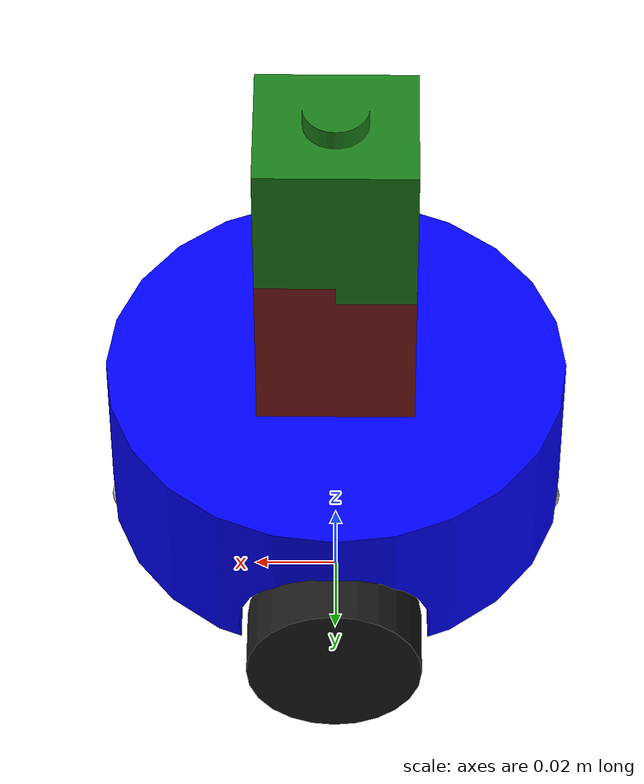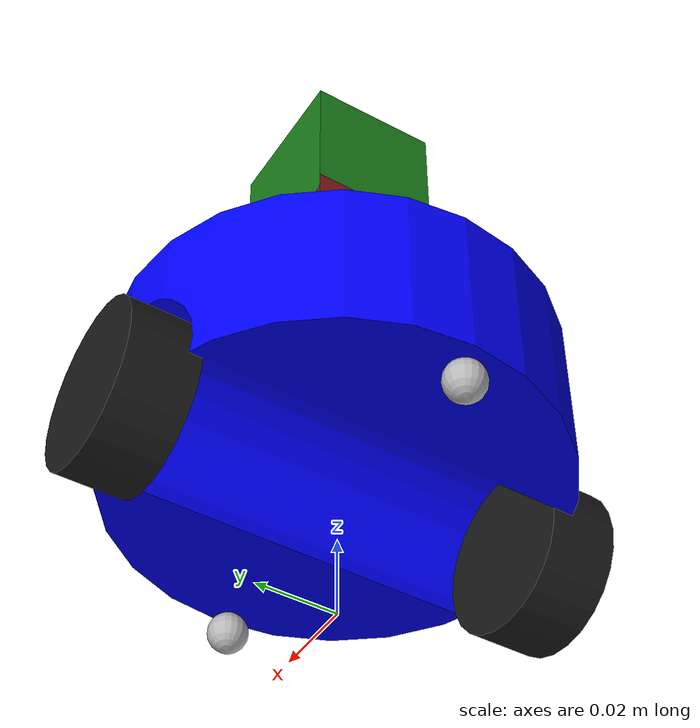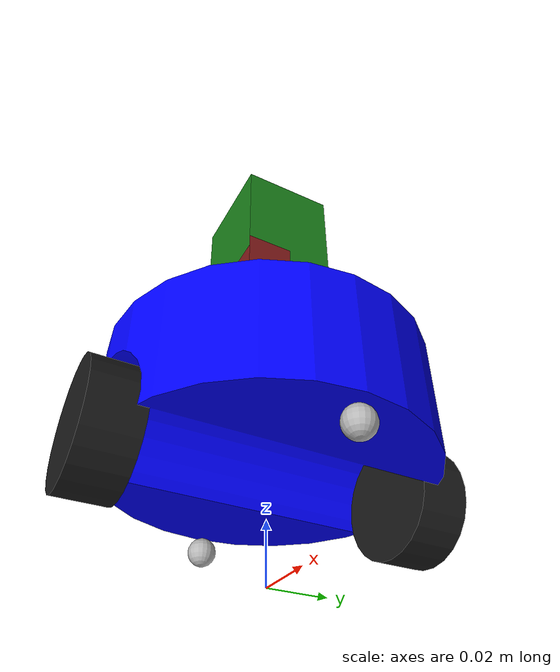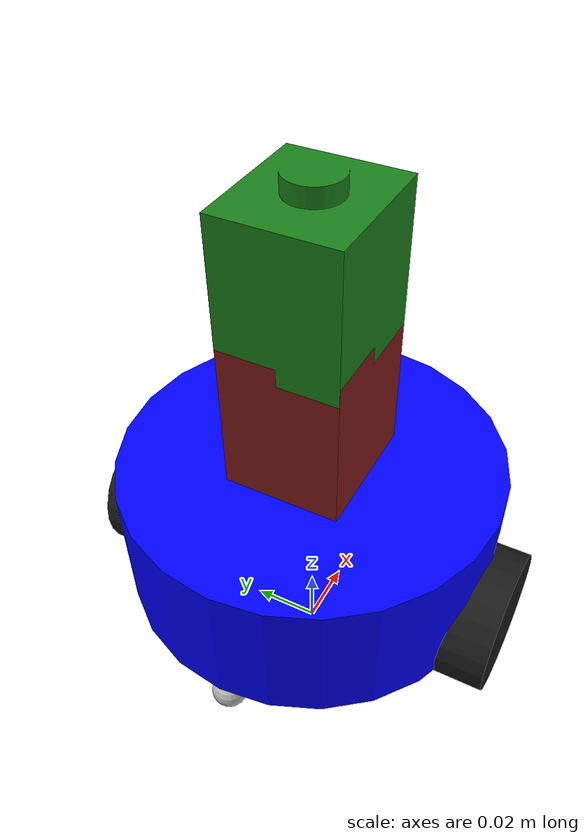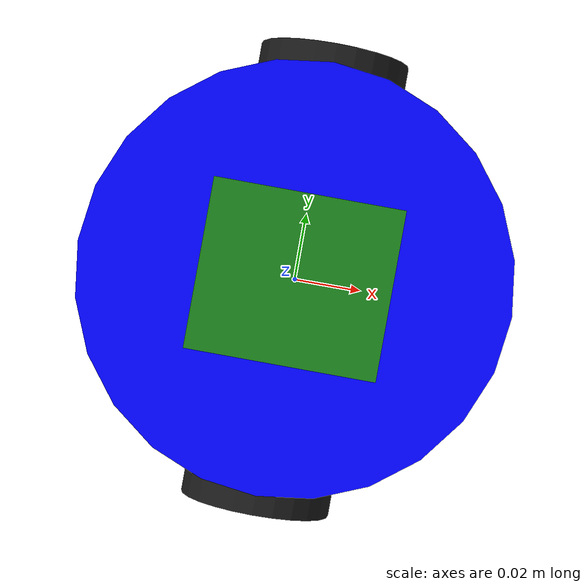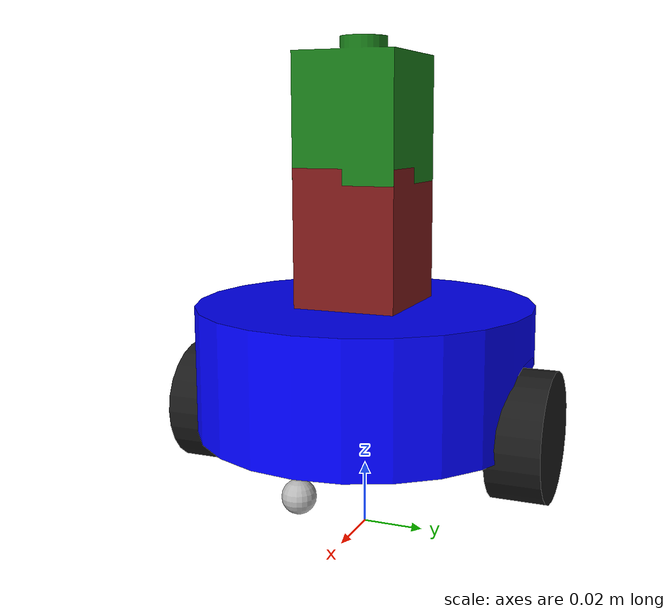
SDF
<?xml version="1.0" encoding="utf-8"?>
<sdf version="1.6">
  <model name="alphabot2">
    <pose>0 0 0 0 0 0</pose><!--Centro do cilindro ao chao-->
    <plugin name="clock" filename="libgz_clock.so">
      <topic>/gazebo/frc/time</topic>
    </plugin>
    <link name="chassis">
      <gravity>1</gravity>
      <self_collide>0</self_collide>
      <pose>0 0 0.016 0 0 0</pose>
      <must_be_base_link>1</must_be_base_link>
      <velocity_decay>
        <linear>0</linear>
        <angular>0</angular>
      </velocity_decay>
      <inertial>
        <mass>0.145</mass>
        <pose>0 0 0.0205 0 0 0</pose><!--0.0000181121 acima do centro do cilindro-->
        <inertia>
          <ixx>0.00000029334</ixx>
          <ixy>0</ixy>
          <ixz>0</ixz>
          <iyy>0.00000029334</iyy>
          <iyz>0</iyz>
          <izz>0.000031066</izz>
        </inertia>
      </inertial>
      <collision name="chassis_collision">
        <pose>0 0 0.016 0 0 0</pose>
        <geometry>
          <mesh>
            <scale>1 1 1</scale>
            <uri>model://meshes/chassis.stl</uri>
          </mesh>
        </geometry>
        <surface>
          <contact>
            <ode>
              <kp>50000</kp>
              <kd>9000</kd>
            </ode>
          </contact>
          <friction>
            <ode>
              <mu>0</mu>
              <mu2>0</mu2>
            </ode>
          </friction>
        </surface>
      </collision>
      <visual name="chassis_visual">
        <pose>0 0 0.016 0 0 0</pose>
        <material>
          <ambient>0.5 0.5 0.5 0.5</ambient>
          <diffuse>0 0 1 1</diffuse>
        </material>
        <geometry><!--Mudar para a visualização certa!-->
          <mesh>
            <scale>1 1 1</scale>
            <uri>model://meshes/chassis.stl</uri>
          </mesh>
        </geometry>
      </visual>
       <sensor type="gpu_ray" name="sensor1_bottom">
        <pose>0.038 -0.028 -0.021 0 1.570796 0</pose>
        <visualize>false</visualize>
        <update_rate>30.0</update_rate>
        <ray>
        <scan>
          <horizontal>
            <samples>200</samples>
            <resolution>1</resolution>
            <min_angle>1.570796</min_angle>
            <max_angle>1.570796</max_angle>
          </horizontal>
        </scan>
        <range>
          <min>0.10</min>
          <max>5.0</max>
          <resolution>0.01</resolution>
        </range>
        <noise>
          <type>gaussian</type>
          <mean>0.0</mean>
          <stddev>0.01</stddev>
        </noise>
      </ray>
      <plugin name="sensor1_bottom_controller" filename="libgazebo_ros_gpu_laser.so">
        <topicName>sensor1_bottom</topicName>
      </plugin>
    </sensor>
    <sensor type="gpu_ray" name="sensor2_bottom">
        <pose>0.038 -0.014 -0.021 0 1.570796 0</pose>
        <visualize>false</visualize>
        <update_rate>30.0</update_rate>
        <ray>
        <scan>
          <horizontal>
            <samples>200</samples>
            <resolution>1</resolution>
            <min_angle>1.570796</min_angle>
            <max_angle>1.570796</max_angle>
          </horizontal>
        </scan>
        <range>
          <min>0.10</min>
          <max>5.0</max>
          <resolution>0.01</resolution>
        </range>
        <noise>
          <type>gaussian</type>
          <mean>0.0</mean>
          <stddev>0.01</stddev>
        </noise>
      </ray>
      <plugin name="sensor2_bottom_controller" filename="libgazebo_ros_gpu_laser.so">
        <topicName>sensor2_bottom</topicName>
      </plugin>
    </sensor>
    <sensor type="gpu_ray" name="sensor3_bottom">
        <pose>0.038 0 -0.021 0 1.570796 0</pose>
        <visualize>true</visualize>
        <update_rate>30.0</update_rate>
        <ray>
        <scan>
          <horizontal>
            <samples>200</samples>
            <resolution>1</resolution>
            <min_angle>1.570796</min_angle>
            <max_angle>1.570796</max_angle>
          </horizontal>
        </scan>
        <range>
          <min>0.10</min>
          <max>5.0</max>
          <resolution>0.01</resolution>
        </range>
        <noise>
          <type>gaussian</type>
          <mean>0.0</mean>
          <stddev>0.01</stddev>
        </noise>
      </ray>
      <plugin name="sensor3_bottom_controller" filename="libgazebo_ros_gpu_laser.so">
        <topicName>sensor3_bottom</topicName>
      </plugin>
    </sensor>
    <sensor type="gpu_ray" name="sensor4_bottom">
        <pose>0.038 0.014 -0.021 0 1.570796 0</pose>
        <visualize>false</visualize>
        <update_rate>30.0</update_rate>
        <ray>
        <scan>
          <horizontal>
            <samples>200</samples>
            <resolution>1</resolution>
            <min_angle>1.570796</min_angle>
            <max_angle>1.570796</max_angle>
          </horizontal>
        </scan>
        <range>
          <min>0.10</min>
          <max>5.0</max>
          <resolution>0.01</resolution>
        </range>
        <noise>
          <type>gaussian</type>
          <mean>0.0</mean>
          <stddev>0.01</stddev>
        </noise>
      </ray>
      <plugin name="sensor4_bottom_controller" filename="libgazebo_ros_gpu_laser.so">
        <topicName>sensor4_bottom</topicName>
      </plugin>
    </sensor>
    <sensor type="gpu_ray" name="sensor5_bottom">
        <pose>0.038 0.028 -0.021 0 1.570796 0</pose>
        <visualize>false</visualize>
        <update_rate>30.0</update_rate>
        <ray>
        <scan>
          <horizontal>
            <samples>200</samples>
            <resolution>1</resolution>
            <min_angle>1.570796</min_angle>
            <max_angle>1.570796</max_angle>
          </horizontal>
        </scan>
        <range>
          <min>0.10</min>
          <max>5.0</max>
          <resolution>0.01</resolution>
        </range>
        <noise>
          <type>gaussian</type>
          <mean>0.0</mean>
          <stddev>0.01</stddev>
        </noise>
      </ray>
      <plugin name="sensor5_bottom_controller" filename="libgazebo_ros_gpu_laser.so">
        <topicName>sensor5_bottom</topicName>
      </plugin>
    </sensor>

    <sensor type="gpu_ray" name="sensor1_top">
        <pose>0.0469 -0.022 -0.0185 0 0 -0.418879020478639</pose>
        <visualize>true</visualize>
        <update_rate>30.0</update_rate>
        <ray>
        <scan>
          <horizontal>
            <samples>200</samples>
            <resolution>1</resolution>
            <min_angle>-1.570796</min_angle>
            <max_angle>1.570796</max_angle>
          </horizontal>
        </scan>
        <range>
          <min>0.10</min>
          <max>5.0</max>
          <resolution>0.01</resolution>
        </range>
        <noise>
          <type>gaussian</type>
          <mean>0.0</mean>
          <stddev>0.01</stddev>
        </noise>
      </ray>
      <plugin name="sensor1_top_controller" filename="libgazebo_ros_gpu_laser.so">
        <topicName>sensor1_top</topicName>
      </plugin>
    </sensor>
    <sensor type="gpu_ray" name="sensor2_top">
        <pose>0.0469 0.022 -0.0185 0 0 0.418879020478639</pose>
        <visualize>false</visualize>
        <update_rate>30.0</update_rate>
        <ray>
        <scan>
          <horizontal>
            <samples>200</samples>
            <resolution>1</resolution>
            <min_angle>-1.570796</min_angle>
            <max_angle>1.570796</max_angle>
          </horizontal>
        </scan>
        <range>
          <min>0.10</min>
          <max>5.0</max>
          <resolution>0.01</resolution>
        </range>
        <noise>
          <type>gaussian</type>
          <mean>0.0</mean>
          <stddev>0.01</stddev>
        </noise>
      </ray>
      <plugin name="sensor2_top_controller" filename="libgazebo_ros_gpu_laser.so">
        <topicName>sensor2_top</topicName>
      </plugin>
    </sensor>

          <collision name='caster_collision_front'>
            <pose>0.05 0 0.011 0 0 0</pose><!--confirmar-->
            <geometry>
                <sphere>
                <radius>0.005</radius>
              </sphere>
            </geometry>

            <surface>
              <friction>
                <ode>
                  <mu>0</mu>
                  <mu2>0</mu2>
                  <slip1>1.0</slip1>
                  <slip2>1.0</slip2>
                </ode>
              </friction>
            </surface>
          </collision>

          <visual name='caster_visual_front'>
            <pose>0.05 0 0.011 0 0 0</pose>
            <geometry>
              <sphere>
                <radius>0.005</radius>
              </sphere>
            </geometry>
          </visual>

  <collision name='caster_collision_back'>
            <pose>-0.05 0 0.011 0 0 0</pose><!--confirmar-->
            <geometry>
                <sphere>
                <radius>0.005</radius>
              </sphere>
            </geometry>

            <surface>
              <friction>
                <ode>
                  <mu>0</mu>
                  <mu2>0</mu2>
                  <slip1>1.0</slip1>
                  <slip2>1.0</slip2>
                </ode>
              </friction>
            </surface>
          </collision>

          <visual name='caster_visual_back'>
            <pose>-0.05 0 0.011 0 0 0</pose>
            <geometry>
              <sphere>
                <radius>0.005</radius>
              </sphere>
            </geometry>
          </visual>

    </link>

    <link name="left_wheel">
      <gravity>1</gravity>
      <self_collide>0</self_collide>
      <pose>0 0 0 0 0 0</pose>
      <must_be_base_link>0</must_be_base_link>
      <velocity_decay>
        <linear>0</linear>
        <angular>0</angular>
      </velocity_decay>
      <inertial>
        <mass>0.045</mass>
        <pose>0 -0.0539 0.0365 0 0 0</pose><!--ponto de inercia no meio da roda-->
        <inertia>
          <ixx>0.00000000136634</ixx>
          <ixy>0</ixy>
          <ixz>0</ixz>
          <iyy>0.000000000136634</iyy>
          <iyz>0</iyz>
          <izz>0.00000945563</izz>
        </inertia>
      </inertial>
      <collision name="left_wheel_collision">
        <pose>0 -0.0539 0.0365 0 1.57079633 1.57079633</pose>
        <geometry>
          <cylinder>
      <length>0.017</length>
      <radius>0.0205</radius>
          </cylinder>
        </geometry>
        <surface>
          <contact>
            <ode>
              <kp>10000</kp>
              <kd>1000</kd>
            </ode>
          </contact>
          <friction>
            <ode>
              <mu>20000</mu>
              <mu2>5000</mu2>
            </ode>
          </friction>
        </surface>
      </collision>
      <visual name="left_wheel_visual">
        <pose>0 -0.0539 0.0365 0 1.57079633 1.57079633</pose>
        <material>
          <ambient>0.5 0.5 0.5 0.5</ambient>
          <diffuse>0.1 0.1 0.1 1</diffuse>
        </material>
        <geometry>
          <cylinder>
      <length>0.017</length>
      <radius>0.0205</radius>
          </cylinder>
        </geometry>
      </visual>
    </link>

    <joint name="chassis-left_wheel" type="revolute">
      <parent>chassis</parent>
      <child>left_wheel</child>
      <pose>0 -0.0539 0.0365 0 0 0</pose>
      <axis>
        <xyz>0 1 0</xyz>
        <dynamics>
          <damping>0</damping>
          <friction>0</friction>
        </dynamics>
        <limit>
          <effort>10</effort>
        </limit>
      </axis>
    </joint>

    <link name="right_wheel">
      <gravity>1</gravity>
      <self_collide>0</self_collide>
      <pose>0 0 0 0 0 0 </pose>
      <must_be_base_link>0</must_be_base_link>
      <velocity_decay>
        <linear>0</linear>
        <angular>0</angular>
      </velocity_decay>
      <inertial>
        <mass>0.045</mass>
        <pose>0 0.0539 0.0365 0 0 0</pose>
        <inertia>
          <ixx>0.00000000136634</ixx>
          <ixy>0</ixy>
          <ixz>0</ixz>
          <iyy>0.000000000136634</iyy>
          <iyz>0</iyz>
          <izz>0.00000945563</izz>
        </inertia>
      </inertial>
      <collision name="right_wheel_collision">
        <pose>0 0.0539 0.0365 0 1.57079633 1.57079633</pose>
        <geometry>
          <cylinder>
	    <length>0.017</length>
	    <radius>0.0205</radius>
          </cylinder>
        </geometry>
        <surface>
          <contact>
            <ode>
              <kp>10000</kp>
              <kd>1000</kd>
            </ode>
          </contact>
          <friction>
            <ode>
              <mu>20000</mu>
              <mu2>5000</mu2>
            </ode>
          </friction>
        </surface>
      </collision>
      <visual name="right_wheel_visual">
        <pose>0 0.0539 0.0365 0 1.57079633 1.57079633</pose>
        <material>
          <ambient>0.5 0.5 0.5 0.5</ambient>
          <diffuse>0.1 0.1 0.1 1</diffuse>
        </material>
        <geometry>
          <cylinder>
	    <length>0.017</length>
	    <radius>0.0205</radius>
          </cylinder>
        </geometry>
      </visual>
    </link>

    <joint name="chassis-right_wheel" type="revolute">
      <parent>chassis</parent>
      <child>right_wheel</child>
      <pose>0 0.0539 0.0365 0 0 0</pose>
      <axis>
        <xyz>0 1 0</xyz>
        <dynamics>
          <damping>0</damping>
          <friction>0</friction>
        </dynamics>
        <limit>
          <effort>10</effort>
        </limit>
      </axis>
    </joint>

    <link name="lower_camera_link">
      <gravity>1</gravity>
      <self_collide>0</self_collide>
      <pose>0 0 0.016 0 0 0 </pose>
      <must_be_base_link>0</must_be_base_link>
      <velocity_decay>
        <linear>0</linear>
        <angular>0</angular>
      </velocity_decay>
      <inertial>
        <mass>0.0225</mass>
        <pose>0 0 0.0795 0 0 0</pose>
        <inertia>
          <ixx>0.0000058388</ixx>
          <ixy>0</ixy>
          <ixz>0</ixz>
          <iyy>0.0000063638</iyy>
          <iyz>0</iyz>
          <izz>0.0000046088</izz>
        </inertia>
      </inertial>
      <collision name="lower_camera_collision">
        <pose>0 0 0.0795 0 0 0</pose>
        <geometry>
          <box>
            <size>0.037 0.033 0.045</size>
          </box>
        </geometry>
        <surface>
          <contact>
            <ode>
              <kp>10000</kp>
              <kd>1000</kd>
            </ode>
          </contact>
          <friction>
            <ode>
              <mu>20000</mu>
              <mu2>5000</mu2>
            </ode>
          </friction>
        </surface>
      </collision>
      <visual name="lower_camera_visual">
        <pose>0 0 0.0795 0 0 0</pose>
        <material>
          <ambient>0.5 0.5 0.5 0.5</ambient>
          <diffuse>0.5 0.1 0.1 1</diffuse>
        </material>
        <geometry>
          <box>
            <size>0.037 0.033 0.045</size>
          </box>
        </geometry>
      </visual>
    </link>
      <!--base of camera-->
  <plugin name="lower_camera_control" filename="libgazebo_ros_control.so">
    <robotNamespace>/baseCamera</robotNamespace>
  </plugin>

    <joint name="chassis-lower_camera" type="revolute">
      <parent>chassis</parent>
      <child>lower_camera_link</child>
      <pose>0 0 0.057 0 0 0</pose>
      <axis>
        <xyz>0 0 1</xyz>
        <limit>
          <lower>-1.57</lower>
          <upper>1.57</upper>
        </limit>
      </axis>
    </joint>

    <link name="upper_camera_link">
      <gravity>1</gravity>
      <self_collide>0</self_collide>
      <pose>0 0 0.016 0 0 0 </pose>
      <must_be_base_link>0</must_be_base_link>
      <velocity_decay>
        <linear>0</linear>
        <angular>0</angular>
      </velocity_decay>
      <inertial>
        <mass>0.0225</mass>
        <pose>0 0 0.117 0 0 0</pose>
        <inertia>
          <ixx>0</ixx>
          <ixy>0</ixy>
          <ixz>0</ixz>
          <iyy>0.000006</iyy>
          <iyz>0</iyz>
          <izz>0.000005</izz>
        </inertia>
      </inertial>
      <collision name="upper_camera_collision">
        <pose>0 0 0.117 0 0 1.57</pose>
        <geometry>
          <mesh>
            <scale>1 1 1</scale>
            <uri>model://meshes/camera.stl</uri>
          </mesh>
        </geometry>
        <surface>
          <contact>
            <ode>
              <kp>10000</kp>
              <kd>1000</kd>
            </ode>
          </contact>
          <friction>
            <ode>
              <mu>20000</mu>
              <mu2>5000</mu2>
            </ode>
          </friction>
        </surface>
      </collision>
      <visual name="upper_camera_visual">
        <pose>0 0 0.117 0 0 1.57</pose>
        <material>
          <ambient>0.5 0.5 0.5 0.5</ambient>
          <diffuse>0.1 0.5 0.1 1</diffuse>
        </material>
        <geometry>
          <mesh>
            <scale>1 1 1</scale>
            <uri>model://meshes/camera.stl</uri>
          </mesh>
        </geometry>
      </visual>
      <sensor name="camera_controller_top" type="camera">
        <visualize>0</visualize>
        <always_on>1</always_on>
        <pose>0 0 0.122 0 -0.28 0</pose>
        <camera name="chassiscameratop">
          <horizontal_fov>1.08504</horizontal_fov>
          <image>
            <width>2552</width>
            <height>1944</height>
          </image>
          <clip>
           <near>0.01</near>
           <far>1000</far>
          </clip>
        </camera>
        <plugin name="camera_controller_tracking_top" filename="libgazebo_ros_camera.so">
          <alwaysOn>true</alwaysOn>
          <updateRate>30.0</updateRate>
          <cameraName>conde_camera_signalling_panel/</cameraName>
          <imageTopicName>image_raw</imageTopicName>
          <cameraInfoTopicName>camera_info_top</cameraInfoTopicName>
        </plugin>
      </sensor>
    </link>
    <joint name="lower_camera-upper_camera" type="revolute">
      <parent>lower_camera_link</parent>
      <child>upper_camera_link</child>
      <pose>0.0185 0 0.097 0 0 0</pose>
      <axis>
        <xyz>0 1 0</xyz>
        <limit>
          <lower>-1.57</lower>
          <upper>1.57</upper>
        </limit>
      </axis>
    </joint>
 <!--top of camera-->
  <plugin name="upper_camera_control" filename="libgazebo_ros_control.so">
    <robotNamespace>/topCamera</robotNamespace>
  </plugin>

  <plugin name='differential_drive_controller' filename='libgazebo_ros_diff_drive.so'>
		<publishWheelTF>true</publishWheelTF>
		<publishWheelJointState>false</publishWheelJointState>
		<alwaysOn>true</alwaysOn>
		<updateRate>50</updateRate>
		<rightJoint>chassis-right_wheel</rightJoint>
		<leftJoint>chassis-left_wheel</leftJoint>
		<wheelSeparation>0.092</wheelSeparation>
		<wheelDiameter>0.041</wheelDiameter>
		<wheelTorque>7.5</wheelTorque>
		<commandTopic>cmd_vel</commandTopic>
		<odometryTopic>odom</odometryTopic>
		<odometryFrame>odom</odometryFrame>
		<robotBaseFrame>base_footprint</robotBaseFrame>
		<robotNamespace>/</robotNamespace>
		<legacyMode>false</legacyMode>
  	<rosDebugLevel>na</rosDebugLevel>
		<wheelAcceleration>0</wheelAcceleration>
		<publishTf>0</publishTf>
	</plugin>
  </model>
</sdf>
